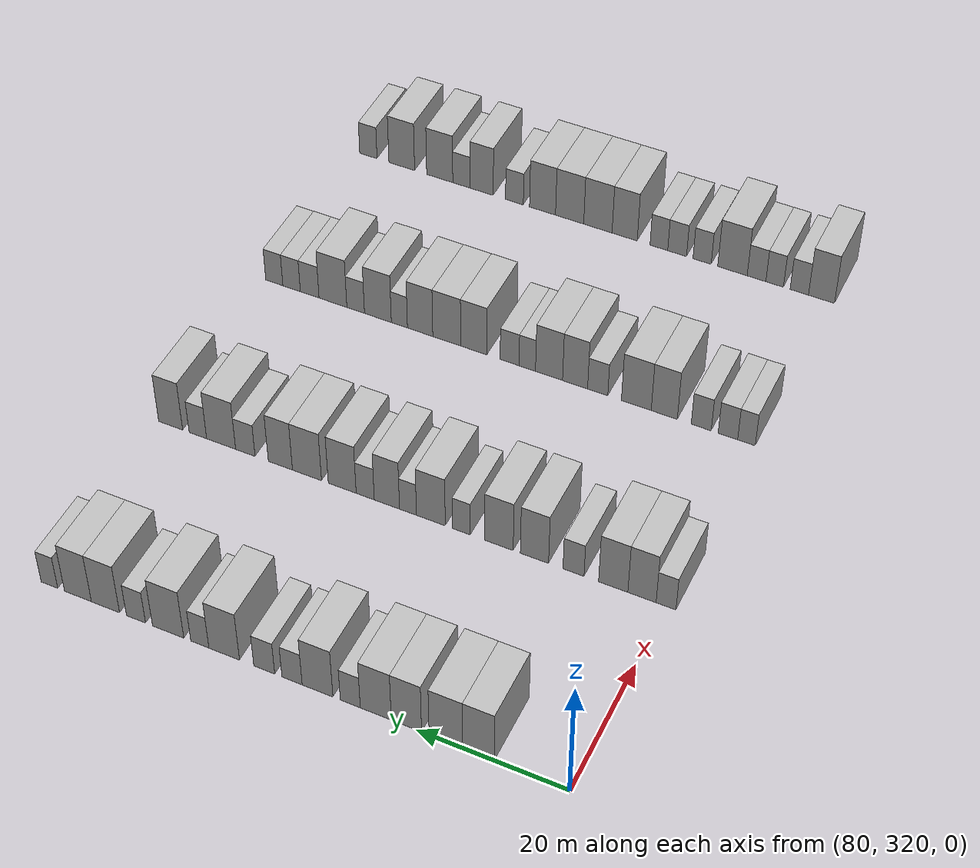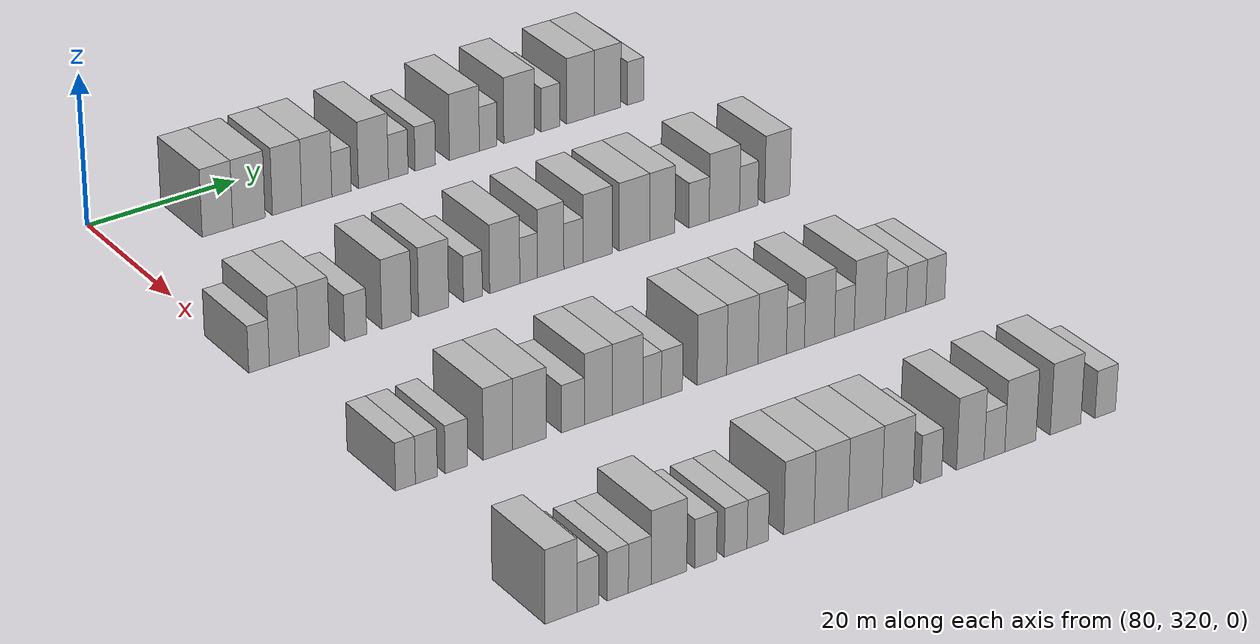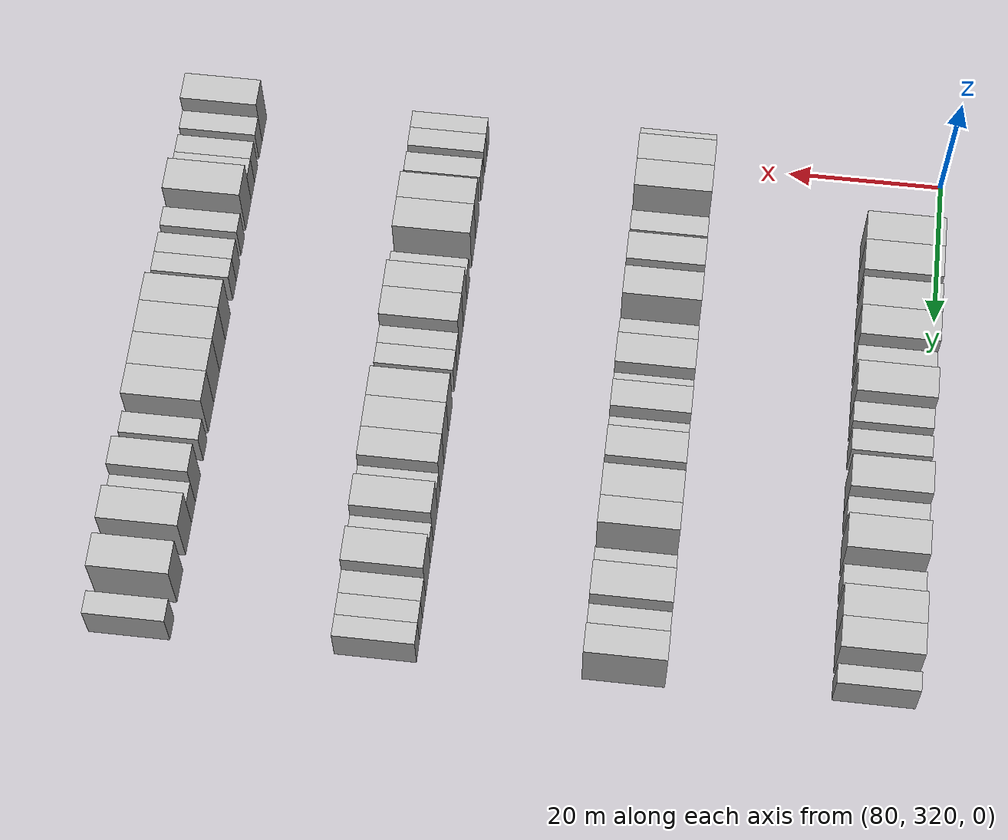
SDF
<sdf version="1.6">
 <world name="default">
  <model name="building_643">
   <static>1</static>
   <pose>85.0000 331.8644 0 0.000000 0.000000 0.000000</pose>
   <link name="link">
    <pose>0 0 4.50 0 0 0</pose>
    <collision name="collision"><geometry><box><size>10.0000 4.1471 9.0000</size></box></geometry></collision>
    <visual name="visual">
     <cast_shadows>0</cast_shadows>
     <geometry><box><size>10.0000 4.1471 9.0000</size></box></geometry>
     <material>
      <script>
       <uri>model://HANNAS_wall/materials/scripts</uri>
       <uri>model://HANNAS_wall/materials/textures</uri>
       <name>vrc/HANNAS_wall</name>
      </script>
     </material>
    </visual>
   </link>
  </model>
  <model name="building_644">
   <static>1</static>
   <pose>85.0000 336.1434 0 0.000000 0.000000 0.000000</pose>
   <link name="link">
    <pose>0 0 4.50 0 0 0</pose>
    <collision name="collision"><geometry><box><size>10.0000 4.4108 9.0000</size></box></geometry></collision>
    <visual name="visual">
     <cast_shadows>0</cast_shadows>
     <geometry><box><size>10.0000 4.4108 9.0000</size></box></geometry>
     <material>
      <script>
       <uri>model://HANNAS_wall/materials/scripts</uri>
       <uri>model://HANNAS_wall/materials/textures</uri>
       <name>vrc/HANNAS_wall</name>
      </script>
     </material>
    </visual>
   </link>
  </model>
  <model name="building_645">
   <static>1</static>
   <pose>85.0000 341.3689 0 0.000000 0.000000 0.000000</pose>
   <link name="link">
    <pose>0 0 4.50 0 0 0</pose>
    <collision name="collision"><geometry><box><size>10.0000 4.0402 9.0000</size></box></geometry></collision>
    <visual name="visual">
     <cast_shadows>0</cast_shadows>
     <geometry><box><size>10.0000 4.0402 9.0000</size></box></geometry>
     <material>
      <script>
       <uri>model://HANNAS_wall/materials/scripts</uri>
       <uri>model://HANNAS_wall/materials/textures</uri>
       <name>vrc/HANNAS_wall</name>
      </script>
     </material>
    </visual>
   </link>
  </model>
  <model name="building_646">
   <static>1</static>
   <pose>85.0000 345.4758 0 0.000000 0.000000 0.000000</pose>
   <link name="link">
    <pose>0 0 4.50 0 0 0</pose>
    <collision name="collision"><geometry><box><size>10.0000 4.1735 9.0000</size></box></geometry></collision>
    <visual name="visual">
     <cast_shadows>0</cast_shadows>
     <geometry><box><size>10.0000 4.1735 9.0000</size></box></geometry>
     <material>
      <script>
       <uri>model://HANNAS_wall/materials/scripts</uri>
       <uri>model://HANNAS_wall/materials/textures</uri>
       <name>vrc/HANNAS_wall</name>
      </script>
     </material>
    </visual>
   </link>
  </model>
  <model name="building_647">
   <static>1</static>
   <pose>85.0000 348.9197 0 0.000000 0.000000 0.000000</pose>
   <link name="link">
    <pose>0 0 3.00 0 0 0</pose>
    <collision name="collision"><geometry><box><size>10.0000 2.7143 6.0000</size></box></geometry></collision>
    <visual name="visual">
     <cast_shadows>0</cast_shadows>
     <geometry><box><size>10.0000 2.7143 6.0000</size></box></geometry>
     <material>
      <script>
       <uri>model://HANNAS_wall/materials/scripts</uri>
       <uri>model://HANNAS_wall/materials/textures</uri>
       <name>vrc/HANNAS_wall</name>
      </script>
     </material>
    </visual>
   </link>
  </model>
  <model name="building_648">
   <static>1</static>
   <pose>85.0000 353.3825 0 0.000000 0.000000 0.000000</pose>
   <link name="link">
    <pose>0 0 4.50 0 0 0</pose>
    <collision name="collision"><geometry><box><size>10.0000 4.2113 9.0000</size></box></geometry></collision>
    <visual name="visual">
     <cast_shadows>0</cast_shadows>
     <geometry><box><size>10.0000 4.2113 9.0000</size></box></geometry>
     <material>
      <script>
       <uri>model://HANNAS_wall/materials/scripts</uri>
       <uri>model://HANNAS_wall/materials/textures</uri>
       <name>vrc/HANNAS_wall</name>
      </script>
     </material>
    </visual>
   </link>
  </model>
  <model name="building_649">
   <static>1</static>
   <pose>85.0000 356.8796 0 0.000000 0.000000 0.000000</pose>
   <link name="link">
    <pose>0 0 3.00 0 0 0</pose>
    <collision name="collision"><geometry><box><size>10.0000 2.7830 6.0000</size></box></geometry></collision>
    <visual name="visual">
     <cast_shadows>0</cast_shadows>
     <geometry><box><size>10.0000 2.7830 6.0000</size></box></geometry>
     <material>
      <script>
       <uri>model://HANNAS_wall/materials/scripts</uri>
       <uri>model://HANNAS_wall/materials/textures</uri>
       <name>vrc/HANNAS_wall</name>
      </script>
     </material>
    </visual>
   </link>
  </model>
  <model name="building_650">
   <static>1</static>
   <pose>85.0000 360.7243 0 0.000000 0.000000 0.000000</pose>
   <link name="link">
    <pose>0 0 3.00 0 0 0</pose>
    <collision name="collision"><geometry><box><size>10.0000 2.9064 6.0000</size></box></geometry></collision>
    <visual name="visual">
     <cast_shadows>0</cast_shadows>
     <geometry><box><size>10.0000 2.9064 6.0000</size></box></geometry>
     <material>
      <script>
       <uri>model://HANNAS_wall/materials/scripts</uri>
       <uri>model://HANNAS_wall/materials/textures</uri>
       <name>vrc/HANNAS_wall</name>
      </script>
     </material>
    </visual>
   </link>
  </model>
  <model name="building_651">
   <static>1</static>
   <pose>85.0000 366.3313 0 0.000000 0.000000 0.000000</pose>
   <link name="link">
    <pose>0 0 4.50 0 0 0</pose>
    <collision name="collision"><geometry><box><size>10.0000 4.3076 9.0000</size></box></geometry></collision>
    <visual name="visual">
     <cast_shadows>0</cast_shadows>
     <geometry><box><size>10.0000 4.3076 9.0000</size></box></geometry>
     <material>
      <script>
       <uri>model://HANNAS_wall/materials/scripts</uri>
       <uri>model://HANNAS_wall/materials/textures</uri>
       <name>vrc/HANNAS_wall</name>
      </script>
     </material>
    </visual>
   </link>
  </model>
  <model name="building_652">
   <static>1</static>
   <pose>85.0000 369.7632 0 0.000000 0.000000 0.000000</pose>
   <link name="link">
    <pose>0 0 3.00 0 0 0</pose>
    <collision name="collision"><geometry><box><size>10.0000 2.5561 6.0000</size></box></geometry></collision>
    <visual name="visual">
     <cast_shadows>0</cast_shadows>
     <geometry><box><size>10.0000 2.5561 6.0000</size></box></geometry>
     <material>
      <script>
       <uri>model://HANNAS_wall/materials/scripts</uri>
       <uri>model://HANNAS_wall/materials/textures</uri>
       <name>vrc/HANNAS_wall</name>
      </script>
     </material>
    </visual>
   </link>
  </model>
  <model name="building_653">
   <static>1</static>
   <pose>85.0000 374.2751 0 0.000000 0.000000 0.000000</pose>
   <link name="link">
    <pose>0 0 4.50 0 0 0</pose>
    <collision name="collision"><geometry><box><size>10.0000 4.4677 9.0000</size></box></geometry></collision>
    <visual name="visual">
     <cast_shadows>0</cast_shadows>
     <geometry><box><size>10.0000 4.4677 9.0000</size></box></geometry>
     <material>
      <script>
       <uri>model://HANNAS_wall/materials/scripts</uri>
       <uri>model://HANNAS_wall/materials/textures</uri>
       <name>vrc/HANNAS_wall</name>
      </script>
     </material>
    </visual>
   </link>
  </model>
  <model name="building_654">
   <static>1</static>
   <pose>85.0000 378.8842 0 0.000000 0.000000 0.000000</pose>
   <link name="link">
    <pose>0 0 3.00 0 0 0</pose>
    <collision name="collision"><geometry><box><size>10.0000 2.7506 6.0000</size></box></geometry></collision>
    <visual name="visual">
     <cast_shadows>0</cast_shadows>
     <geometry><box><size>10.0000 2.7506 6.0000</size></box></geometry>
     <material>
      <script>
       <uri>model://HANNAS_wall/materials/scripts</uri>
       <uri>model://HANNAS_wall/materials/textures</uri>
       <name>vrc/HANNAS_wall</name>
      </script>
     </material>
    </visual>
   </link>
  </model>
  <model name="building_655">
   <static>1</static>
   <pose>85.0000 383.3092 0 0.000000 0.000000 0.000000</pose>
   <link name="link">
    <pose>0 0 4.50 0 0 0</pose>
    <collision name="collision"><geometry><box><size>10.0000 4.0993 9.0000</size></box></geometry></collision>
    <visual name="visual">
     <cast_shadows>0</cast_shadows>
     <geometry><box><size>10.0000 4.0993 9.0000</size></box></geometry>
     <material>
      <script>
       <uri>model://HANNAS_wall/materials/scripts</uri>
       <uri>model://HANNAS_wall/materials/textures</uri>
       <name>vrc/HANNAS_wall</name>
      </script>
     </material>
    </visual>
   </link>
  </model>
  <model name="building_656">
   <static>1</static>
   <pose>85.0000 387.3315 0 0.000000 0.000000 0.000000</pose>
   <link name="link">
    <pose>0 0 4.50 0 0 0</pose>
    <collision name="collision"><geometry><box><size>10.0000 3.9455 9.0000</size></box></geometry></collision>
    <visual name="visual">
     <cast_shadows>0</cast_shadows>
     <geometry><box><size>10.0000 3.9455 9.0000</size></box></geometry>
     <material>
      <script>
       <uri>model://HANNAS_wall/materials/scripts</uri>
       <uri>model://HANNAS_wall/materials/textures</uri>
       <name>vrc/HANNAS_wall</name>
      </script>
     </material>
    </visual>
   </link>
  </model>
  <model name="building_657">
   <static>1</static>
   <pose>85.0000 391.5290 0 0.000000 0.000000 0.000000</pose>
   <link name="link">
    <pose>0 0 3.00 0 0 0</pose>
    <collision name="collision"><geometry><box><size>10.0000 2.4494 6.0000</size></box></geometry></collision>
    <visual name="visual">
     <cast_shadows>0</cast_shadows>
     <geometry><box><size>10.0000 2.4494 6.0000</size></box></geometry>
     <material>
      <script>
       <uri>model://HANNAS_wall/materials/scripts</uri>
       <uri>model://HANNAS_wall/materials/textures</uri>
       <name>vrc/HANNAS_wall</name>
      </script>
     </material>
    </visual>
   </link>
  </model>
  <model name="building_869">
   <static>1</static>
   <pose>115.0000 320.0880 0 0.000000 0.000000 0.000000</pose>
   <link name="link">
    <pose>0 0 3.00 0 0 0</pose>
    <collision name="collision"><geometry><box><size>10.0000 2.6761 6.0000</size></box></geometry></collision>
    <visual name="visual">
     <cast_shadows>0</cast_shadows>
     <geometry><box><size>10.0000 2.6761 6.0000</size></box></geometry>
     <material>
      <script>
       <uri>model://HANNAS_wall/materials/scripts</uri>
       <uri>model://HANNAS_wall/materials/textures</uri>
       <name>vrc/HANNAS_wall</name>
      </script>
     </material>
    </visual>
   </link>
  </model>
  <model name="building_870">
   <static>1</static>
   <pose>115.0000 323.3387 0 0.000000 0.000000 0.000000</pose>
   <link name="link">
    <pose>0 0 4.50 0 0 0</pose>
    <collision name="collision"><geometry><box><size>10.0000 3.8252 9.0000</size></box></geometry></collision>
    <visual name="visual">
     <cast_shadows>0</cast_shadows>
     <geometry><box><size>10.0000 3.8252 9.0000</size></box></geometry>
     <material>
      <script>
       <uri>model://HANNAS_wall/materials/scripts</uri>
       <uri>model://HANNAS_wall/materials/textures</uri>
       <name>vrc/HANNAS_wall</name>
      </script>
     </material>
    </visual>
   </link>
  </model>
  <model name="building_871">
   <static>1</static>
   <pose>115.0000 327.2474 0 0.000000 0.000000 0.000000</pose>
   <link name="link">
    <pose>0 0 4.50 0 0 0</pose>
    <collision name="collision"><geometry><box><size>10.0000 3.9922 9.0000</size></box></geometry></collision>
    <visual name="visual">
     <cast_shadows>0</cast_shadows>
     <geometry><box><size>10.0000 3.9922 9.0000</size></box></geometry>
     <material>
      <script>
       <uri>model://HANNAS_wall/materials/scripts</uri>
       <uri>model://HANNAS_wall/materials/textures</uri>
       <name>vrc/HANNAS_wall</name>
      </script>
     </material>
    </visual>
   </link>
  </model>
  <model name="building_872">
   <static>1</static>
   <pose>115.0000 332.6953 0 0.000000 0.000000 0.000000</pose>
   <link name="link">
    <pose>0 0 3.00 0 0 0</pose>
    <collision name="collision"><geometry><box><size>10.0000 2.9035 6.0000</size></box></geometry></collision>
    <visual name="visual">
     <cast_shadows>0</cast_shadows>
     <geometry><box><size>10.0000 2.9035 6.0000</size></box></geometry>
     <material>
      <script>
       <uri>model://HANNAS_wall/materials/scripts</uri>
       <uri>model://HANNAS_wall/materials/textures</uri>
       <name>vrc/HANNAS_wall</name>
      </script>
     </material>
    </visual>
   </link>
  </model>
  <model name="building_873">
   <static>1</static>
   <pose>115.0000 338.1138 0 0.000000 0.000000 0.000000</pose>
   <link name="link">
    <pose>0 0 4.50 0 0 0</pose>
    <collision name="collision"><geometry><box><size>10.0000 3.9336 9.0000</size></box></geometry></collision>
    <visual name="visual">
     <cast_shadows>0</cast_shadows>
     <geometry><box><size>10.0000 3.9336 9.0000</size></box></geometry>
     <material>
      <script>
       <uri>model://HANNAS_wall/materials/scripts</uri>
       <uri>model://HANNAS_wall/materials/textures</uri>
       <name>vrc/HANNAS_wall</name>
      </script>
     </material>
    </visual>
   </link>
  </model>
  <model name="building_874">
   <static>1</static>
   <pose>115.0000 343.1038 0 0.000000 0.000000 0.000000</pose>
   <link name="link">
    <pose>0 0 4.50 0 0 0</pose>
    <collision name="collision"><geometry><box><size>10.0000 4.0465 9.0000</size></box></geometry></collision>
    <visual name="visual">
     <cast_shadows>0</cast_shadows>
     <geometry><box><size>10.0000 4.0465 9.0000</size></box></geometry>
     <material>
      <script>
       <uri>model://HANNAS_wall/materials/scripts</uri>
       <uri>model://HANNAS_wall/materials/textures</uri>
       <name>vrc/HANNAS_wall</name>
      </script>
     </material>
    </visual>
   </link>
  </model>
  <model name="building_875">
   <static>1</static>
   <pose>115.0000 348.4108 0 0.000000 0.000000 0.000000</pose>
   <link name="link">
    <pose>0 0 3.00 0 0 0</pose>
    <collision name="collision"><geometry><box><size>10.0000 2.5675 6.0000</size></box></geometry></collision>
    <visual name="visual">
     <cast_shadows>0</cast_shadows>
     <geometry><box><size>10.0000 2.5675 6.0000</size></box></geometry>
     <material>
      <script>
       <uri>model://HANNAS_wall/materials/scripts</uri>
       <uri>model://HANNAS_wall/materials/textures</uri>
       <name>vrc/HANNAS_wall</name>
      </script>
     </material>
    </visual>
   </link>
  </model>
  <model name="building_876">
   <static>1</static>
   <pose>115.0000 352.7620 0 0.000000 0.000000 0.000000</pose>
   <link name="link">
    <pose>0 0 4.50 0 0 0</pose>
    <collision name="collision"><geometry><box><size>10.0000 4.1349 9.0000</size></box></geometry></collision>
    <visual name="visual">
     <cast_shadows>0</cast_shadows>
     <geometry><box><size>10.0000 4.1349 9.0000</size></box></geometry>
     <material>
      <script>
       <uri>model://HANNAS_wall/materials/scripts</uri>
       <uri>model://HANNAS_wall/materials/textures</uri>
       <name>vrc/HANNAS_wall</name>
      </script>
     </material>
    </visual>
   </link>
  </model>
  <model name="building_877">
   <static>1</static>
   <pose>115.0000 356.0509 0 0.000000 0.000000 0.000000</pose>
   <link name="link">
    <pose>0 0 3.00 0 0 0</pose>
    <collision name="collision"><geometry><box><size>10.0000 2.4429 6.0000</size></box></geometry></collision>
    <visual name="visual">
     <cast_shadows>0</cast_shadows>
     <geometry><box><size>10.0000 2.4429 6.0000</size></box></geometry>
     <material>
      <script>
       <uri>model://HANNAS_wall/materials/scripts</uri>
       <uri>model://HANNAS_wall/materials/textures</uri>
       <name>vrc/HANNAS_wall</name>
      </script>
     </material>
    </visual>
   </link>
  </model>
  <model name="building_878">
   <static>1</static>
   <pose>115.0000 359.1070 0 0.000000 0.000000 0.000000</pose>
   <link name="link">
    <pose>0 0 4.50 0 0 0</pose>
    <collision name="collision"><geometry><box><size>10.0000 3.6692 9.0000</size></box></geometry></collision>
    <visual name="visual">
     <cast_shadows>0</cast_shadows>
     <geometry><box><size>10.0000 3.6692 9.0000</size></box></geometry>
     <material>
      <script>
       <uri>model://HANNAS_wall/materials/scripts</uri>
       <uri>model://HANNAS_wall/materials/textures</uri>
       <name>vrc/HANNAS_wall</name>
      </script>
     </material>
    </visual>
   </link>
  </model>
  <model name="building_879">
   <static>1</static>
   <pose>115.0000 362.2668 0 0.000000 0.000000 0.000000</pose>
   <link name="link">
    <pose>0 0 3.00 0 0 0</pose>
    <collision name="collision"><geometry><box><size>10.0000 2.6504 6.0000</size></box></geometry></collision>
    <visual name="visual">
     <cast_shadows>0</cast_shadows>
     <geometry><box><size>10.0000 2.6504 6.0000</size></box></geometry>
     <material>
      <script>
       <uri>model://HANNAS_wall/materials/scripts</uri>
       <uri>model://HANNAS_wall/materials/textures</uri>
       <name>vrc/HANNAS_wall</name>
      </script>
     </material>
    </visual>
   </link>
  </model>
  <model name="building_880">
   <static>1</static>
   <pose>115.0000 365.6425 0 0.000000 0.000000 0.000000</pose>
   <link name="link">
    <pose>0 0 4.50 0 0 0</pose>
    <collision name="collision"><geometry><box><size>10.0000 4.1010 9.0000</size></box></geometry></collision>
    <visual name="visual">
     <cast_shadows>0</cast_shadows>
     <geometry><box><size>10.0000 4.1010 9.0000</size></box></geometry>
     <material>
      <script>
       <uri>model://HANNAS_wall/materials/scripts</uri>
       <uri>model://HANNAS_wall/materials/textures</uri>
       <name>vrc/HANNAS_wall</name>
      </script>
     </material>
    </visual>
   </link>
  </model>
  <model name="building_881">
   <static>1</static>
   <pose>115.0000 370.8526 0 0.000000 0.000000 0.000000</pose>
   <link name="link">
    <pose>0 0 4.50 0 0 0</pose>
    <collision name="collision"><geometry><box><size>10.0000 4.3191 9.0000</size></box></geometry></collision>
    <visual name="visual">
     <cast_shadows>0</cast_shadows>
     <geometry><box><size>10.0000 4.3191 9.0000</size></box></geometry>
     <material>
      <script>
       <uri>model://HANNAS_wall/materials/scripts</uri>
       <uri>model://HANNAS_wall/materials/textures</uri>
       <name>vrc/HANNAS_wall</name>
      </script>
     </material>
    </visual>
   </link>
  </model>
  <model name="building_882">
   <static>1</static>
   <pose>115.0000 374.8183 0 0.000000 0.000000 0.000000</pose>
   <link name="link">
    <pose>0 0 4.50 0 0 0</pose>
    <collision name="collision"><geometry><box><size>10.0000 3.6123 9.0000</size></box></geometry></collision>
    <visual name="visual">
     <cast_shadows>0</cast_shadows>
     <geometry><box><size>10.0000 3.6123 9.0000</size></box></geometry>
     <material>
      <script>
       <uri>model://HANNAS_wall/materials/scripts</uri>
       <uri>model://HANNAS_wall/materials/textures</uri>
       <name>vrc/HANNAS_wall</name>
      </script>
     </material>
    </visual>
   </link>
  </model>
  <model name="building_883">
   <static>1</static>
   <pose>115.0000 380.0928 0 0.000000 0.000000 0.000000</pose>
   <link name="link">
    <pose>0 0 3.00 0 0 0</pose>
    <collision name="collision"><geometry><box><size>10.0000 2.9368 6.0000</size></box></geometry></collision>
    <visual name="visual">
     <cast_shadows>0</cast_shadows>
     <geometry><box><size>10.0000 2.9368 6.0000</size></box></geometry>
     <material>
      <script>
       <uri>model://HANNAS_wall/materials/scripts</uri>
       <uri>model://HANNAS_wall/materials/textures</uri>
       <name>vrc/HANNAS_wall</name>
      </script>
     </material>
    </visual>
   </link>
  </model>
  <model name="building_884">
   <static>1</static>
   <pose>115.0000 383.7743 0 0.000000 0.000000 0.000000</pose>
   <link name="link">
    <pose>0 0 4.50 0 0 0</pose>
    <collision name="collision"><geometry><box><size>10.0000 4.4262 9.0000</size></box></geometry></collision>
    <visual name="visual">
     <cast_shadows>0</cast_shadows>
     <geometry><box><size>10.0000 4.4262 9.0000</size></box></geometry>
     <material>
      <script>
       <uri>model://HANNAS_wall/materials/scripts</uri>
       <uri>model://HANNAS_wall/materials/textures</uri>
       <name>vrc/HANNAS_wall</name>
      </script>
     </material>
    </visual>
   </link>
  </model>
  <model name="building_885">
   <static>1</static>
   <pose>115.0000 387.3258 0 0.000000 0.000000 0.000000</pose>
   <link name="link">
    <pose>0 0 3.00 0 0 0</pose>
    <collision name="collision"><geometry><box><size>10.0000 2.6768 6.0000</size></box></geometry></collision>
    <visual name="visual">
     <cast_shadows>0</cast_shadows>
     <geometry><box><size>10.0000 2.6768 6.0000</size></box></geometry>
     <material>
      <script>
       <uri>model://HANNAS_wall/materials/scripts</uri>
       <uri>model://HANNAS_wall/materials/textures</uri>
       <name>vrc/HANNAS_wall</name>
      </script>
     </material>
    </visual>
   </link>
  </model>
  <model name="building_886">
   <static>1</static>
   <pose>115.0000 391.5172 0 0.000000 0.000000 0.000000</pose>
   <link name="link">
    <pose>0 0 4.50 0 0 0</pose>
    <collision name="collision"><geometry><box><size>10.0000 3.7060 9.0000</size></box></geometry></collision>
    <visual name="visual">
     <cast_shadows>0</cast_shadows>
     <geometry><box><size>10.0000 3.7060 9.0000</size></box></geometry>
     <material>
      <script>
       <uri>model://HANNAS_wall/materials/scripts</uri>
       <uri>model://HANNAS_wall/materials/textures</uri>
       <name>vrc/HANNAS_wall</name>
      </script>
     </material>
    </visual>
   </link>
  </model>
  <model name="building_1085">
   <static>1</static>
   <pose>145.0000 320.7202 0 0.000000 0.000000 0.000000</pose>
   <link name="link">
    <pose>0 0 3.00 0 0 0</pose>
    <collision name="collision"><geometry><box><size>10.0000 2.4949 6.0000</size></box></geometry></collision>
    <visual name="visual">
     <cast_shadows>0</cast_shadows>
     <geometry><box><size>10.0000 2.4949 6.0000</size></box></geometry>
     <material>
      <script>
       <uri>model://HANNAS_wall/materials/scripts</uri>
       <uri>model://HANNAS_wall/materials/textures</uri>
       <name>vrc/HANNAS_wall</name>
      </script>
     </material>
    </visual>
   </link>
  </model>
  <model name="building_1086">
   <static>1</static>
   <pose>145.0000 323.3538 0 0.000000 0.000000 0.000000</pose>
   <link name="link">
    <pose>0 0 3.00 0 0 0</pose>
    <collision name="collision"><geometry><box><size>10.0000 2.7723 6.0000</size></box></geometry></collision>
    <visual name="visual">
     <cast_shadows>0</cast_shadows>
     <geometry><box><size>10.0000 2.7723 6.0000</size></box></geometry>
     <material>
      <script>
       <uri>model://HANNAS_wall/materials/scripts</uri>
       <uri>model://HANNAS_wall/materials/textures</uri>
       <name>vrc/HANNAS_wall</name>
      </script>
     </material>
    </visual>
   </link>
  </model>
  <model name="building_1087">
   <static>1</static>
   <pose>145.0000 327.1715 0 0.000000 0.000000 0.000000</pose>
   <link name="link">
    <pose>0 0 3.00 0 0 0</pose>
    <collision name="collision"><geometry><box><size>10.0000 2.8630 6.0000</size></box></geometry></collision>
    <visual name="visual">
     <cast_shadows>0</cast_shadows>
     <geometry><box><size>10.0000 2.8630 6.0000</size></box></geometry>
     <material>
      <script>
       <uri>model://HANNAS_wall/materials/scripts</uri>
       <uri>model://HANNAS_wall/materials/textures</uri>
       <name>vrc/HANNAS_wall</name>
      </script>
     </material>
    </visual>
   </link>
  </model>
  <model name="building_1088">
   <static>1</static>
   <pose>145.0000 332.4955 0 0.000000 0.000000 0.000000</pose>
   <link name="link">
    <pose>0 0 4.50 0 0 0</pose>
    <collision name="collision"><geometry><box><size>10.0000 3.7851 9.0000</size></box></geometry></collision>
    <visual name="visual">
     <cast_shadows>0</cast_shadows>
     <geometry><box><size>10.0000 3.7851 9.0000</size></box></geometry>
     <material>
      <script>
       <uri>model://HANNAS_wall/materials/scripts</uri>
       <uri>model://HANNAS_wall/materials/textures</uri>
       <name>vrc/HANNAS_wall</name>
      </script>
     </material>
    </visual>
   </link>
  </model>
  <model name="building_1089">
   <static>1</static>
   <pose>145.0000 336.5617 0 0.000000 0.000000 0.000000</pose>
   <link name="link">
    <pose>0 0 4.50 0 0 0</pose>
    <collision name="collision"><geometry><box><size>10.0000 4.3471 9.0000</size></box></geometry></collision>
    <visual name="visual">
     <cast_shadows>0</cast_shadows>
     <geometry><box><size>10.0000 4.3471 9.0000</size></box></geometry>
     <material>
      <script>
       <uri>model://HANNAS_wall/materials/scripts</uri>
       <uri>model://HANNAS_wall/materials/textures</uri>
       <name>vrc/HANNAS_wall</name>
      </script>
     </material>
    </visual>
   </link>
  </model>
  <model name="building_1090">
   <static>1</static>
   <pose>145.0000 342.2232 0 0.000000 0.000000 0.000000</pose>
   <link name="link">
    <pose>0 0 3.00 0 0 0</pose>
    <collision name="collision"><geometry><box><size>10.0000 2.9759 6.0000</size></box></geometry></collision>
    <visual name="visual">
     <cast_shadows>0</cast_shadows>
     <geometry><box><size>10.0000 2.9759 6.0000</size></box></geometry>
     <material>
      <script>
       <uri>model://HANNAS_wall/materials/scripts</uri>
       <uri>model://HANNAS_wall/materials/textures</uri>
       <name>vrc/HANNAS_wall</name>
      </script>
     </material>
    </visual>
   </link>
  </model>
  <model name="building_1091">
   <static>1</static>
   <pose>145.0000 345.5716 0 0.000000 0.000000 0.000000</pose>
   <link name="link">
    <pose>0 0 4.50 0 0 0</pose>
    <collision name="collision"><geometry><box><size>10.0000 3.7207 9.0000</size></box></geometry></collision>
    <visual name="visual">
     <cast_shadows>0</cast_shadows>
     <geometry><box><size>10.0000 3.7207 9.0000</size></box></geometry>
     <material>
      <script>
       <uri>model://HANNAS_wall/materials/scripts</uri>
       <uri>model://HANNAS_wall/materials/textures</uri>
       <name>vrc/HANNAS_wall</name>
      </script>
     </material>
    </visual>
   </link>
  </model>
  <model name="building_1092">
   <static>1</static>
   <pose>145.0000 349.4532 0 0.000000 0.000000 0.000000</pose>
   <link name="link">
    <pose>0 0 4.50 0 0 0</pose>
    <collision name="collision"><geometry><box><size>10.0000 4.0425 9.0000</size></box></geometry></collision>
    <visual name="visual">
     <cast_shadows>0</cast_shadows>
     <geometry><box><size>10.0000 4.0425 9.0000</size></box></geometry>
     <material>
      <script>
       <uri>model://HANNAS_wall/materials/scripts</uri>
       <uri>model://HANNAS_wall/materials/textures</uri>
       <name>vrc/HANNAS_wall</name>
      </script>
     </material>
    </visual>
   </link>
  </model>
  <model name="building_1093">
   <static>1</static>
   <pose>145.0000 352.7126 0 0.000000 0.000000 0.000000</pose>
   <link name="link">
    <pose>0 0 3.00 0 0 0</pose>
    <collision name="collision"><geometry><box><size>10.0000 2.4763 6.0000</size></box></geometry></collision>
    <visual name="visual">
     <cast_shadows>0</cast_shadows>
     <geometry><box><size>10.0000 2.4763 6.0000</size></box></geometry>
     <material>
      <script>
       <uri>model://HANNAS_wall/materials/scripts</uri>
       <uri>model://HANNAS_wall/materials/textures</uri>
       <name>vrc/HANNAS_wall</name>
      </script>
     </material>
    </visual>
   </link>
  </model>
  <model name="building_1094">
   <static>1</static>
   <pose>145.0000 355.3766 0 0.000000 0.000000 0.000000</pose>
   <link name="link">
    <pose>0 0 3.00 0 0 0</pose>
    <collision name="collision"><geometry><box><size>10.0000 2.8517 6.0000</size></box></geometry></collision>
    <visual name="visual">
     <cast_shadows>0</cast_shadows>
     <geometry><box><size>10.0000 2.8517 6.0000</size></box></geometry>
     <material>
      <script>
       <uri>model://HANNAS_wall/materials/scripts</uri>
       <uri>model://HANNAS_wall/materials/textures</uri>
       <name>vrc/HANNAS_wall</name>
      </script>
     </material>
    </visual>
   </link>
  </model>
  <model name="building_1095">
   <static>1</static>
   <pose>145.0000 360.8102 0 0.000000 0.000000 0.000000</pose>
   <link name="link">
    <pose>0 0 4.50 0 0 0</pose>
    <collision name="collision"><geometry><box><size>10.0000 4.0155 9.0000</size></box></geometry></collision>
    <visual name="visual">
     <cast_shadows>0</cast_shadows>
     <geometry><box><size>10.0000 4.0155 9.0000</size></box></geometry>
     <material>
      <script>
       <uri>model://HANNAS_wall/materials/scripts</uri>
       <uri>model://HANNAS_wall/materials/textures</uri>
       <name>vrc/HANNAS_wall</name>
      </script>
     </material>
    </visual>
   </link>
  </model>
  <model name="building_1096">
   <static>1</static>
   <pose>145.0000 364.9617 0 0.000000 0.000000 0.000000</pose>
   <link name="link">
    <pose>0 0 4.50 0 0 0</pose>
    <collision name="collision"><geometry><box><size>10.0000 4.2875 9.0000</size></box></geometry></collision>
    <visual name="visual">
     <cast_shadows>0</cast_shadows>
     <geometry><box><size>10.0000 4.2875 9.0000</size></box></geometry>
     <material>
      <script>
       <uri>model://HANNAS_wall/materials/scripts</uri>
       <uri>model://HANNAS_wall/materials/textures</uri>
       <name>vrc/HANNAS_wall</name>
      </script>
     </material>
    </visual>
   </link>
  </model>
  <model name="building_1097">
   <static>1</static>
   <pose>145.0000 369.0681 0 0.000000 0.000000 0.000000</pose>
   <link name="link">
    <pose>0 0 4.50 0 0 0</pose>
    <collision name="collision"><geometry><box><size>10.0000 3.9253 9.0000</size></box></geometry></collision>
    <visual name="visual">
     <cast_shadows>0</cast_shadows>
     <geometry><box><size>10.0000 3.9253 9.0000</size></box></geometry>
     <material>
      <script>
       <uri>model://HANNAS_wall/materials/scripts</uri>
       <uri>model://HANNAS_wall/materials/textures</uri>
       <name>vrc/HANNAS_wall</name>
      </script>
     </material>
    </visual>
   </link>
  </model>
  <model name="building_1098">
   <static>1</static>
   <pose>145.0000 372.2850 0 0.000000 0.000000 0.000000</pose>
   <link name="link">
    <pose>0 0 3.00 0 0 0</pose>
    <collision name="collision"><geometry><box><size>10.0000 2.5085 6.0000</size></box></geometry></collision>
    <visual name="visual">
     <cast_shadows>0</cast_shadows>
     <geometry><box><size>10.0000 2.5085 6.0000</size></box></geometry>
     <material>
      <script>
       <uri>model://HANNAS_wall/materials/scripts</uri>
       <uri>model://HANNAS_wall/materials/textures</uri>
       <name>vrc/HANNAS_wall</name>
      </script>
     </material>
    </visual>
   </link>
  </model>
  <model name="building_1099">
   <static>1</static>
   <pose>145.0000 375.6431 0 0.000000 0.000000 0.000000</pose>
   <link name="link">
    <pose>0 0 4.50 0 0 0</pose>
    <collision name="collision"><geometry><box><size>10.0000 4.2077 9.0000</size></box></geometry></collision>
    <visual name="visual">
     <cast_shadows>0</cast_shadows>
     <geometry><box><size>10.0000 4.2077 9.0000</size></box></geometry>
     <material>
      <script>
       <uri>model://HANNAS_wall/materials/scripts</uri>
       <uri>model://HANNAS_wall/materials/textures</uri>
       <name>vrc/HANNAS_wall</name>
      </script>
     </material>
    </visual>
   </link>
  </model>
  <model name="building_1100">
   <static>1</static>
   <pose>145.0000 379.1398 0 0.000000 0.000000 0.000000</pose>
   <link name="link">
    <pose>0 0 3.00 0 0 0</pose>
    <collision name="collision"><geometry><box><size>10.0000 2.7857 6.0000</size></box></geometry></collision>
    <visual name="visual">
     <cast_shadows>0</cast_shadows>
     <geometry><box><size>10.0000 2.7857 6.0000</size></box></geometry>
     <material>
      <script>
       <uri>model://HANNAS_wall/materials/scripts</uri>
       <uri>model://HANNAS_wall/materials/textures</uri>
       <name>vrc/HANNAS_wall</name>
      </script>
     </material>
    </visual>
   </link>
  </model>
  <model name="building_1101">
   <static>1</static>
   <pose>145.0000 382.7420 0 0.000000 0.000000 0.000000</pose>
   <link name="link">
    <pose>0 0 4.50 0 0 0</pose>
    <collision name="collision"><geometry><box><size>10.0000 4.4188 9.0000</size></box></geometry></collision>
    <visual name="visual">
     <cast_shadows>0</cast_shadows>
     <geometry><box><size>10.0000 4.4188 9.0000</size></box></geometry>
     <material>
      <script>
       <uri>model://HANNAS_wall/materials/scripts</uri>
       <uri>model://HANNAS_wall/materials/textures</uri>
       <name>vrc/HANNAS_wall</name>
      </script>
     </material>
    </visual>
   </link>
  </model>
  <model name="building_1102">
   <static>1</static>
   <pose>145.0000 386.4475 0 0.000000 0.000000 0.000000</pose>
   <link name="link">
    <pose>0 0 3.00 0 0 0</pose>
    <collision name="collision"><geometry><box><size>10.0000 2.9922 6.0000</size></box></geometry></collision>
    <visual name="visual">
     <cast_shadows>0</cast_shadows>
     <geometry><box><size>10.0000 2.9922 6.0000</size></box></geometry>
     <material>
      <script>
       <uri>model://HANNAS_wall/materials/scripts</uri>
       <uri>model://HANNAS_wall/materials/textures</uri>
       <name>vrc/HANNAS_wall</name>
      </script>
     </material>
    </visual>
   </link>
  </model>
  <model name="building_1103">
   <static>1</static>
   <pose>145.0000 389.3477 0 0.000000 0.000000 0.000000</pose>
   <link name="link">
    <pose>0 0 3.00 0 0 0</pose>
    <collision name="collision"><geometry><box><size>10.0000 2.8081 6.0000</size></box></geometry></collision>
    <visual name="visual">
     <cast_shadows>0</cast_shadows>
     <geometry><box><size>10.0000 2.8081 6.0000</size></box></geometry>
     <material>
      <script>
       <uri>model://HANNAS_wall/materials/scripts</uri>
       <uri>model://HANNAS_wall/materials/textures</uri>
       <name>vrc/HANNAS_wall</name>
      </script>
     </material>
    </visual>
   </link>
  </model>
  <model name="building_1104">
   <static>1</static>
   <pose>145.0000 392.1268 0 0.000000 0.000000 0.000000</pose>
   <link name="link">
    <pose>0 0 3.00 0 0 0</pose>
    <collision name="collision"><geometry><box><size>10.0000 2.7501 6.0000</size></box></geometry></collision>
    <visual name="visual">
     <cast_shadows>0</cast_shadows>
     <geometry><box><size>10.0000 2.7501 6.0000</size></box></geometry>
     <material>
      <script>
       <uri>model://HANNAS_wall/materials/scripts</uri>
       <uri>model://HANNAS_wall/materials/textures</uri>
       <name>vrc/HANNAS_wall</name>
      </script>
     </material>
    </visual>
   </link>
  </model>
  <model name="building_1324">
   <static>1</static>
   <pose>175.0000 320.7829 0 0.000000 0.000000 0.000000</pose>
   <link name="link">
    <pose>0 0 4.50 0 0 0</pose>
    <collision name="collision"><geometry><box><size>10.0000 3.8750 9.0000</size></box></geometry></collision>
    <visual name="visual">
     <cast_shadows>0</cast_shadows>
     <geometry><box><size>10.0000 3.8750 9.0000</size></box></geometry>
     <material>
      <script>
       <uri>model://HANNAS_wall/materials/scripts</uri>
       <uri>model://HANNAS_wall/materials/textures</uri>
       <name>vrc/HANNAS_wall</name>
      </script>
     </material>
    </visual>
   </link>
  </model>
  <model name="building_1325">
   <static>1</static>
   <pose>175.0000 324.0938 0 0.000000 0.000000 0.000000</pose>
   <link name="link">
    <pose>0 0 3.00 0 0 0</pose>
    <collision name="collision"><geometry><box><size>10.0000 2.7468 6.0000</size></box></geometry></collision>
    <visual name="visual">
     <cast_shadows>0</cast_shadows>
     <geometry><box><size>10.0000 2.7468 6.0000</size></box></geometry>
     <material>
      <script>
       <uri>model://HANNAS_wall/materials/scripts</uri>
       <uri>model://HANNAS_wall/materials/textures</uri>
       <name>vrc/HANNAS_wall</name>
      </script>
     </material>
    </visual>
   </link>
  </model>
  <model name="building_1326">
   <static>1</static>
   <pose>175.0000 327.7882 0 0.000000 0.000000 0.000000</pose>
   <link name="link">
    <pose>0 0 3.00 0 0 0</pose>
    <collision name="collision"><geometry><box><size>10.0000 2.6420 6.0000</size></box></geometry></collision>
    <visual name="visual">
     <cast_shadows>0</cast_shadows>
     <geometry><box><size>10.0000 2.6420 6.0000</size></box></geometry>
     <material>
      <script>
       <uri>model://HANNAS_wall/materials/scripts</uri>
       <uri>model://HANNAS_wall/materials/textures</uri>
       <name>vrc/HANNAS_wall</name>
      </script>
     </material>
    </visual>
   </link>
  </model>
  <model name="building_1327">
   <static>1</static>
   <pose>175.0000 330.5224 0 0.000000 0.000000 0.000000</pose>
   <link name="link">
    <pose>0 0 3.00 0 0 0</pose>
    <collision name="collision"><geometry><box><size>10.0000 2.8263 6.0000</size></box></geometry></collision>
    <visual name="visual">
     <cast_shadows>0</cast_shadows>
     <geometry><box><size>10.0000 2.8263 6.0000</size></box></geometry>
     <material>
      <script>
       <uri>model://HANNAS_wall/materials/scripts</uri>
       <uri>model://HANNAS_wall/materials/textures</uri>
       <name>vrc/HANNAS_wall</name>
      </script>
     </material>
    </visual>
   </link>
  </model>
  <model name="building_1328">
   <static>1</static>
   <pose>175.0000 334.1811 0 0.000000 0.000000 0.000000</pose>
   <link name="link">
    <pose>0 0 4.50 0 0 0</pose>
    <collision name="collision"><geometry><box><size>10.0000 4.4912 9.0000</size></box></geometry></collision>
    <visual name="visual">
     <cast_shadows>0</cast_shadows>
     <geometry><box><size>10.0000 4.4912 9.0000</size></box></geometry>
     <material>
      <script>
       <uri>model://HANNAS_wall/materials/scripts</uri>
       <uri>model://HANNAS_wall/materials/textures</uri>
       <name>vrc/HANNAS_wall</name>
      </script>
     </material>
    </visual>
   </link>
  </model>
  <model name="building_1329">
   <static>1</static>
   <pose>175.0000 338.8222 0 0.000000 0.000000 0.000000</pose>
   <link name="link">
    <pose>0 0 3.00 0 0 0</pose>
    <collision name="collision"><geometry><box><size>10.0000 2.7909 6.0000</size></box></geometry></collision>
    <visual name="visual">
     <cast_shadows>0</cast_shadows>
     <geometry><box><size>10.0000 2.7909 6.0000</size></box></geometry>
     <material>
      <script>
       <uri>model://HANNAS_wall/materials/scripts</uri>
       <uri>model://HANNAS_wall/materials/textures</uri>
       <name>vrc/HANNAS_wall</name>
      </script>
     </material>
    </visual>
   </link>
  </model>
  <model name="building_1330">
   <static>1</static>
   <pose>175.0000 342.6680 0 0.000000 0.000000 0.000000</pose>
   <link name="link">
    <pose>0 0 3.00 0 0 0</pose>
    <collision name="collision"><geometry><box><size>10.0000 2.9008 6.0000</size></box></geometry></collision>
    <visual name="visual">
     <cast_shadows>0</cast_shadows>
     <geometry><box><size>10.0000 2.9008 6.0000</size></box></geometry>
     <material>
      <script>
       <uri>model://HANNAS_wall/materials/scripts</uri>
       <uri>model://HANNAS_wall/materials/textures</uri>
       <name>vrc/HANNAS_wall</name>
      </script>
     </material>
    </visual>
   </link>
  </model>
  <model name="building_1331">
   <static>1</static>
   <pose>175.0000 345.4944 0 0.000000 0.000000 0.000000</pose>
   <link name="link">
    <pose>0 0 3.00 0 0 0</pose>
    <collision name="collision"><geometry><box><size>10.0000 2.7519 6.0000</size></box></geometry></collision>
    <visual name="visual">
     <cast_shadows>0</cast_shadows>
     <geometry><box><size>10.0000 2.7519 6.0000</size></box></geometry>
     <material>
      <script>
       <uri>model://HANNAS_wall/materials/scripts</uri>
       <uri>model://HANNAS_wall/materials/textures</uri>
       <name>vrc/HANNAS_wall</name>
      </script>
     </material>
    </visual>
   </link>
  </model>
  <model name="building_1332">
   <static>1</static>
   <pose>175.0000 350.8419 0 0.000000 0.000000 0.000000</pose>
   <link name="link">
    <pose>0 0 4.50 0 0 0</pose>
    <collision name="collision"><geometry><box><size>10.0000 3.9432 9.0000</size></box></geometry></collision>
    <visual name="visual">
     <cast_shadows>0</cast_shadows>
     <geometry><box><size>10.0000 3.9432 9.0000</size></box></geometry>
     <material>
      <script>
       <uri>model://HANNAS_wall/materials/scripts</uri>
       <uri>model://HANNAS_wall/materials/textures</uri>
       <name>vrc/HANNAS_wall</name>
      </script>
     </material>
    </visual>
   </link>
  </model>
  <model name="building_1333">
   <static>1</static>
   <pose>175.0000 355.0542 0 0.000000 0.000000 0.000000</pose>
   <link name="link">
    <pose>0 0 4.50 0 0 0</pose>
    <collision name="collision"><geometry><box><size>10.0000 4.4813 9.0000</size></box></geometry></collision>
    <visual name="visual">
     <cast_shadows>0</cast_shadows>
     <geometry><box><size>10.0000 4.4813 9.0000</size></box></geometry>
     <material>
      <script>
       <uri>model://HANNAS_wall/materials/scripts</uri>
       <uri>model://HANNAS_wall/materials/textures</uri>
       <name>vrc/HANNAS_wall</name>
      </script>
     </material>
    </visual>
   </link>
  </model>
  <model name="building_1334">
   <static>1</static>
   <pose>175.0000 359.5391 0 0.000000 0.000000 0.000000</pose>
   <link name="link">
    <pose>0 0 4.50 0 0 0</pose>
    <collision name="collision"><geometry><box><size>10.0000 4.4885 9.0000</size></box></geometry></collision>
    <visual name="visual">
     <cast_shadows>0</cast_shadows>
     <geometry><box><size>10.0000 4.4885 9.0000</size></box></geometry>
     <material>
      <script>
       <uri>model://HANNAS_wall/materials/scripts</uri>
       <uri>model://HANNAS_wall/materials/textures</uri>
       <name>vrc/HANNAS_wall</name>
      </script>
     </material>
    </visual>
   </link>
  </model>
  <model name="building_1335">
   <static>1</static>
   <pose>175.0000 363.8670 0 0.000000 0.000000 0.000000</pose>
   <link name="link">
    <pose>0 0 4.50 0 0 0</pose>
    <collision name="collision"><geometry><box><size>10.0000 4.1673 9.0000</size></box></geometry></collision>
    <visual name="visual">
     <cast_shadows>0</cast_shadows>
     <geometry><box><size>10.0000 4.1673 9.0000</size></box></geometry>
     <material>
      <script>
       <uri>model://HANNAS_wall/materials/scripts</uri>
       <uri>model://HANNAS_wall/materials/textures</uri>
       <name>vrc/HANNAS_wall</name>
      </script>
     </material>
    </visual>
   </link>
  </model>
  <model name="building_1336">
   <static>1</static>
   <pose>175.0000 368.3846 0 0.000000 0.000000 0.000000</pose>
   <link name="link">
    <pose>0 0 3.00 0 0 0</pose>
    <collision name="collision"><geometry><box><size>10.0000 2.8680 6.0000</size></box></geometry></collision>
    <visual name="visual">
     <cast_shadows>0</cast_shadows>
     <geometry><box><size>10.0000 2.8680 6.0000</size></box></geometry>
     <material>
      <script>
       <uri>model://HANNAS_wall/materials/scripts</uri>
       <uri>model://HANNAS_wall/materials/textures</uri>
       <name>vrc/HANNAS_wall</name>
      </script>
     </material>
    </visual>
   </link>
  </model>
  <model name="building_1337">
   <static>1</static>
   <pose>175.0000 373.7050 0 0.000000 0.000000 0.000000</pose>
   <link name="link">
    <pose>0 0 4.50 0 0 0</pose>
    <collision name="collision"><geometry><box><size>10.0000 3.7728 9.0000</size></box></geometry></collision>
    <visual name="visual">
     <cast_shadows>0</cast_shadows>
     <geometry><box><size>10.0000 3.7728 9.0000</size></box></geometry>
     <material>
      <script>
       <uri>model://HANNAS_wall/materials/scripts</uri>
       <uri>model://HANNAS_wall/materials/textures</uri>
       <name>vrc/HANNAS_wall</name>
      </script>
     </material>
    </visual>
   </link>
  </model>
  <model name="building_1338">
   <static>1</static>
   <pose>175.0000 377.0110 0 0.000000 0.000000 0.000000</pose>
   <link name="link">
    <pose>0 0 3.00 0 0 0</pose>
    <collision name="collision"><geometry><box><size>10.0000 2.8392 6.0000</size></box></geometry></collision>
    <visual name="visual">
     <cast_shadows>0</cast_shadows>
     <geometry><box><size>10.0000 2.8392 6.0000</size></box></geometry>
     <material>
      <script>
       <uri>model://HANNAS_wall/materials/scripts</uri>
       <uri>model://HANNAS_wall/materials/textures</uri>
       <name>vrc/HANNAS_wall</name>
      </script>
     </material>
    </visual>
   </link>
  </model>
  <model name="building_1339">
   <static>1</static>
   <pose>175.0000 380.5853 0 0.000000 0.000000 0.000000</pose>
   <link name="link">
    <pose>0 0 4.50 0 0 0</pose>
    <collision name="collision"><geometry><box><size>10.0000 4.3093 9.0000</size></box></geometry></collision>
    <visual name="visual">
     <cast_shadows>0</cast_shadows>
     <geometry><box><size>10.0000 4.3093 9.0000</size></box></geometry>
     <material>
      <script>
       <uri>model://HANNAS_wall/materials/scripts</uri>
       <uri>model://HANNAS_wall/materials/textures</uri>
       <name>vrc/HANNAS_wall</name>
      </script>
     </material>
    </visual>
   </link>
  </model>
  <model name="building_1340">
   <static>1</static>
   <pose>175.0000 386.8817 0 0.000000 0.000000 0.000000</pose>
   <link name="link">
    <pose>0 0 4.50 0 0 0</pose>
    <collision name="collision"><geometry><box><size>10.0000 4.2834 9.0000</size></box></geometry></collision>
    <visual name="visual">
     <cast_shadows>0</cast_shadows>
     <geometry><box><size>10.0000 4.2834 9.0000</size></box></geometry>
     <material>
      <script>
       <uri>model://HANNAS_wall/materials/scripts</uri>
       <uri>model://HANNAS_wall/materials/textures</uri>
       <name>vrc/HANNAS_wall</name>
      </script>
     </material>
    </visual>
   </link>
  </model>
  <model name="building_1341">
   <static>1</static>
   <pose>175.0000 392.4763 0 0.000000 0.000000 0.000000</pose>
   <link name="link">
    <pose>0 0 3.00 0 0 0</pose>
    <collision name="collision"><geometry><box><size>10.0000 2.9059 6.0000</size></box></geometry></collision>
    <visual name="visual">
     <cast_shadows>0</cast_shadows>
     <geometry><box><size>10.0000 2.9059 6.0000</size></box></geometry>
     <material>
      <script>
       <uri>model://HANNAS_wall/materials/scripts</uri>
       <uri>model://HANNAS_wall/materials/textures</uri>
       <name>vrc/HANNAS_wall</name>
      </script>
     </material>
    </visual>
   </link>
  </model>
 </world>
</sdf>
